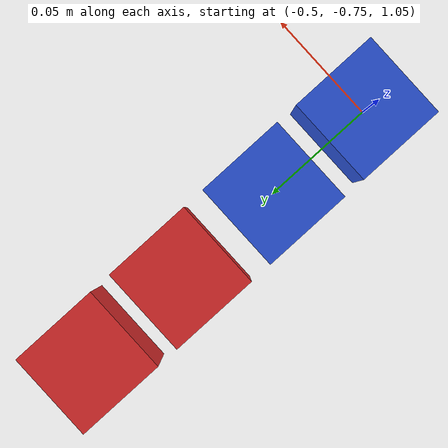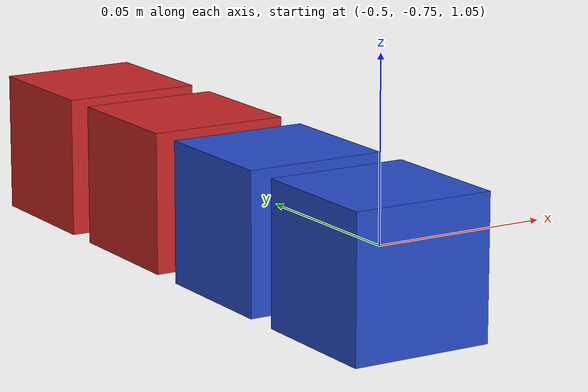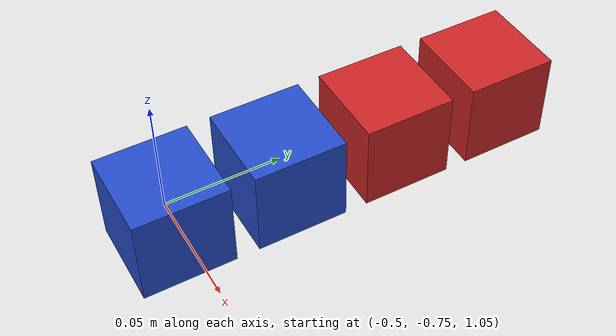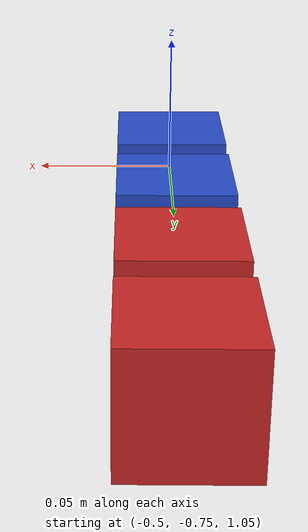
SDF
<sdf version="1.4">
 <world name="default">
  <include><uri>model://ground_plane</uri></include>
  <include><uri>model://sun</uri></include>
  <model name="box1">
   <pose>-.5 -0.6 1.021 0 0 0</pose>
   <link name="link">
    <pose>0 0 0.025 0 0 0</pose>
    <inertial>
     <mass>0.0565</mass>
     <inertia>
      <ixx>2.3541666666666672e-05</ixx>
      <ixy>0</ixy>
      <ixz>0</ixz>
      <iyy>2.3541666666666672e-05</iyy>
      <iyz>0</iyz>
      <izz>2.3541666666666672e-05</izz>
     </inertia>
    </inertial>
    <collision name="collision">
     <geometry><box><size>0.04 0.04 0.04</size></box></geometry>
     <surface>
      <contact>
       <poissons_ratio>0.347</poissons_ratio>
       <elastic_modulus>8.8e+09</elastic_modulus>
       <ode><kp>100000</kp><kd>1</kd><max_vel>1.0</max_vel><min_depth>0.001</min_depth></ode>
      </contact>
      <friction>
       <torsional>
        <coefficient>1.0</coefficient>
        <use_patch_radius>0</use_patch_radius>
        <surface_radius>0.05</surface_radius>
       </torsional>
      </friction>
     </surface>
    </collision>
    <visual name="visual">
     <geometry><box><size>0.04 0.04 0.04</size></box></geometry>
     <material>
      <script><uri>file://media/materials/scripts/gazebo.material</uri><name>Gazebo/Red</name></script>
     </material>
    </visual>
   </link>
  </model>
  <model name="box2">
   <pose>-.5 -0.65 1.021 0 0 0</pose>
   <link name="link">
    <pose>0 0 0.025 0 0 0</pose>
    <inertial>
     <mass>0.0565</mass>
     <inertia>
      <ixx>2.3541666666666672e-05</ixx>
      <ixy>0</ixy>
      <ixz>0</ixz>
      <iyy>2.3541666666666672e-05</iyy>
      <iyz>0</iyz>
      <izz>2.3541666666666672e-05</izz>
     </inertia>
    </inertial>
    <collision name="collision">
     <geometry><box><size>0.04 0.04 0.04</size></box></geometry>
     <surface>
      <contact>
       <poissons_ratio>0.347</poissons_ratio>
       <elastic_modulus>8.8e+09</elastic_modulus>
       <ode><kp>100000</kp><kd>1</kd><max_vel>1.0</max_vel><min_depth>0.001</min_depth></ode>
      </contact>
      <friction>
       <torsional>
        <coefficient>1.0</coefficient>
        <use_patch_radius>0</use_patch_radius>
        <surface_radius>0.05</surface_radius>
       </torsional>
      </friction>
     </surface>
    </collision>
    <visual name="visual">
     <geometry><box><size>0.04 0.04 0.04</size></box></geometry>
     <material>
      <script><uri>file://media/materials/scripts/gazebo.material</uri><name>Gazebo/Red</name></script>
     </material>
    </visual>
   </link>
  </model>
  <model name="box3">
   <pose>-.5 -0.7 1.021 0 0 0</pose>
   <link name="link">
    <pose>0 0 0.025 0 0 0</pose>
    <inertial>
     <mass>0.0565</mass>
     <inertia>
      <ixx>2.3541666666666672e-05</ixx>
      <ixy>0</ixy>
      <ixz>0</ixz>
      <iyy>2.3541666666666672e-05</iyy>
      <iyz>0</iyz>
      <izz>2.3541666666666672e-05</izz>
     </inertia>
    </inertial>
    <collision name="collision">
     <geometry><box><size>0.04 0.04 0.04</size></box></geometry>
     <surface>
      <contact>
       <poissons_ratio>0.347</poissons_ratio>
       <elastic_modulus>8.8e+09</elastic_modulus>
       <ode><kp>100000</kp><kd>1</kd><max_vel>1.0</max_vel><min_depth>0.001</min_depth></ode>
      </contact>
      <friction>
       <torsional>
        <coefficient>1.0</coefficient>
        <use_patch_radius>0</use_patch_radius>
        <surface_radius>0.05</surface_radius>
       </torsional>
      </friction>
     </surface>
    </collision>
    <visual name="visual">
     <geometry><box><size>0.04 0.04 0.04</size></box></geometry>
     <material>
      <script><uri>file://media/materials/scripts/gazebo.material</uri><name>Gazebo/Blue</name></script>
     </material>
    </visual>
   </link>
  </model>
  <model name="box4">
   <pose>-.5 -0.75 1.021 0 0 0</pose>
   <link name="link">
    <pose>0 0 0.025 0 0 0</pose>
    <inertial>
     <mass>0.0565</mass>
     <inertia>
      <ixx>2.3541666666666672e-05</ixx>
      <ixy>0</ixy>
      <ixz>0</ixz>
      <iyy>2.3541666666666672e-05</iyy>
      <iyz>0</iyz>
      <izz>2.3541666666666672e-05</izz>
     </inertia>
    </inertial>
    <collision name="collision">
     <geometry><box><size>0.04 0.04 0.04</size></box></geometry>
     <surface>
      <contact>
       <poissons_ratio>0.347</poissons_ratio>
       <elastic_modulus>8.8e+09</elastic_modulus>
       <ode><kp>100000</kp><kd>1</kd><max_vel>1.0</max_vel><min_depth>0.001</min_depth></ode>
      </contact>
      <friction>
       <torsional>
        <coefficient>1.0</coefficient>
        <use_patch_radius>0</use_patch_radius>
        <surface_radius>0.05</surface_radius>
       </torsional>
      </friction>
     </surface>
    </collision>
    <visual name="visual">
     <geometry><box><size>0.04 0.04 0.04</size></box></geometry>
     <material>
      <script><uri>file://media/materials/scripts/gazebo.material</uri><name>Gazebo/Blue</name></script>
     </material>
    </visual>
   </link>
  </model>
  <link name="camera_frame">
   <inertial>
    <inertia><ixx>0.01</ixx><ixy>0</ixy><ixz>0</ixz><iyy>0.01</iyy><iyz>0</iyz><izz>0.01</izz></inertia>
    <mass>1</mass>
   </inertial>
   <collision name="collision"><geometry><box><size>0.1 0.1 0.1</size></box></geometry></collision>
   <visual name="visual"><geometry><box><size>0.1 0.5 0.1</size></box></geometry></visual>
   <pose>0 -0.2 1.5 0 0.1 -1.57</pose>
   <sensor name="camera" type="camera">
    <always_on>1</always_on>
    <visualize>1</visualize>
    <update_rate>30</update_rate>
    <camera name="prius_cam">
     <horizontal_fov>1.0856</horizontal_fov>
     <image><width>1280</width><height>720</height><format>R8G8B8</format></image>
     <clip><near>0.03</near><far>100</far></clip>
     <noise><type>gaussian</type><mean>0</mean><stddev>0.007</stddev></noise>
    </camera>
    <plugin name="camera_frame_controller" filename="libgazebo_ros_openni_kinect.so">
     <baseline>0.2</baseline>
     <alwaysOn>true</alwaysOn>
     <updateRate>1.0</updateRate>
     <cameraName>camera_frame_ir</cameraName>
     <imageTopicName>/camera_frame/ir/image_raw</imageTopicName>
     <cameraInfoTopicName>/camera_frame/ir/camera_info</cameraInfoTopicName>
     <depthImageTopicName>/camera_frame/depth/image_raw</depthImageTopicName>
     <depthImageCameraInfoTopicName>/camera_frame/depth/camera_info</depthImageCameraInfoTopicName>
     <pointCloudTopicName>/camera_frame/depth/points</pointCloudTopicName>
     <frameName>camera_frame</frameName>
     <pointCloudCutoff>0.5</pointCloudCutoff>
     <distortionK1>0.00000001</distortionK1>
     <distortionK2>0.00000001</distortionK2>
     <distortionK3>0.00000001</distortionK3>
     <distortionT1>0.00000001</distortionT1>
     <distortionT2>0.00000001</distortionT2>
     <CxPrime>0</CxPrime>
     <Cx>0</Cx>
     <Cy>0</Cy>
     <focalLength>0</focalLength>
     <hackBaseline>0</hackBaseline>
    </plugin>
   </sensor>
  </link>
  <joint name="camera_joint" type="fixed"><parent>chassis</parent><child>base_link</child></joint>
  <model name="prius_hybrid">
   <pose>-2.3288 -2.3521 0.46982 0 0 0</pose>
   <scale>1 1 1</scale>
   <link name="camera_frame">
    <pose>-2.32618 -32.1522 1.54698 0 0.099999 1.55849</pose>
    <velocity>-1e-06 -2.1e-05 2.2e-05 4e-06 -0 0</velocity>
    <acceleration>0.000159 8e-06 -2e-06 -2e-06 4.4e-05 -2.7e-05</acceleration>
    <wrench>0.000159 8e-06 -2e-06 0 -0 0</wrench>
   </link>
  </model>
  <physics type="ode" update_rate="100.0">
   <max_step_size>0.001</max_step_size>
   <real_time_factor>1</real_time_factor>
   <real_time_update_rate>1000</real_time_update_rate>
   <gravity>0 0 -9.81</gravity>
  </physics>
 </world>
</sdf>
